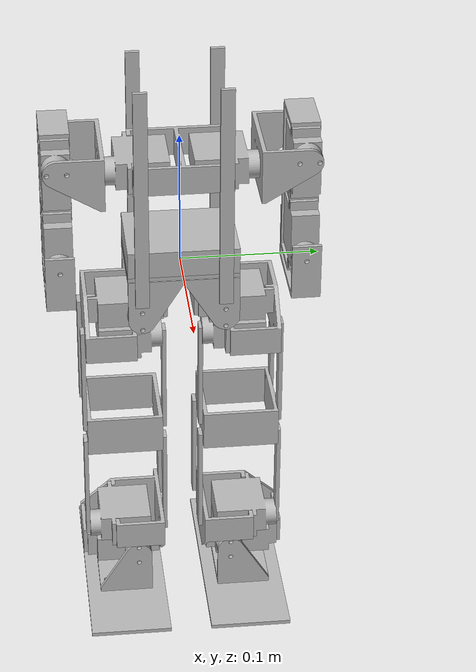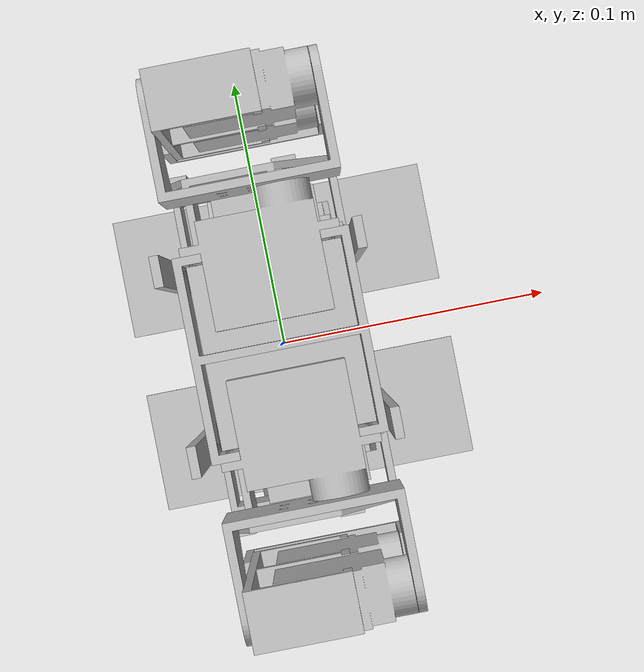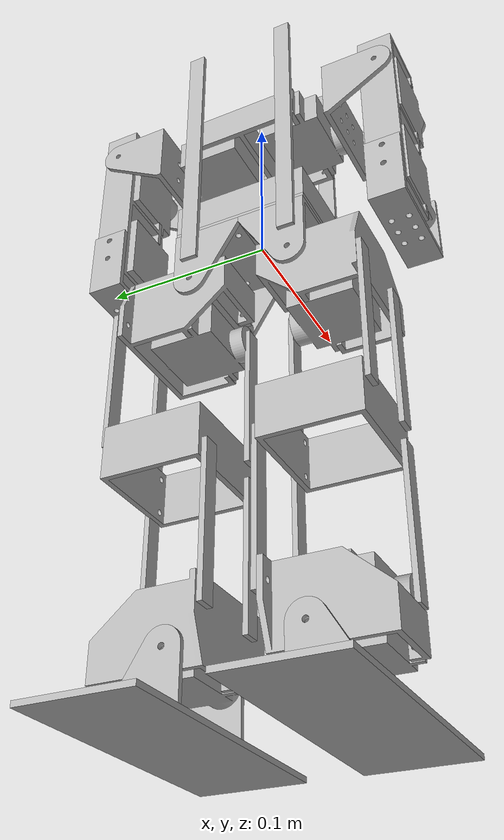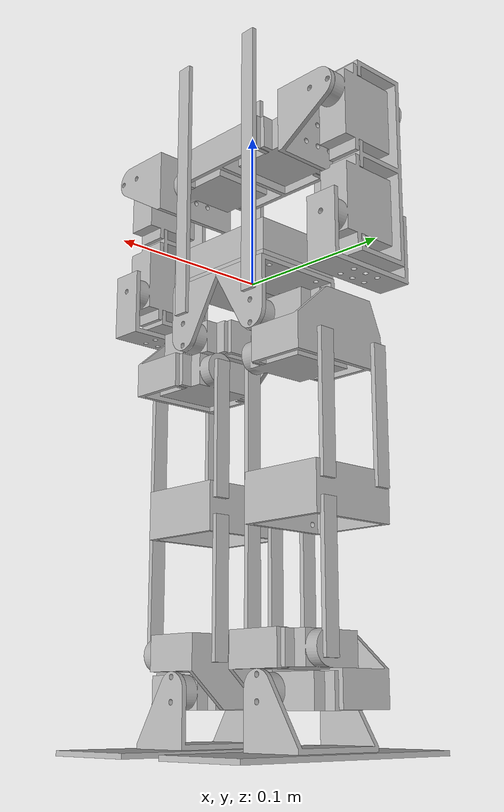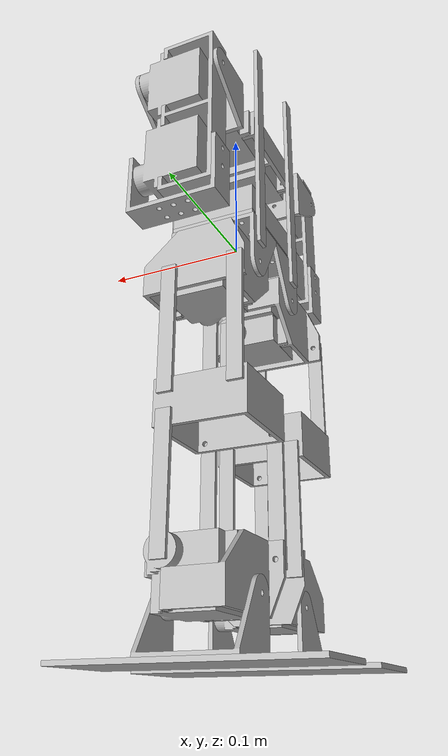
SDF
<sdf version='1.6'>
  <model name='b3w_walker'>
    <link name='base_link'>
      <pose frame=''>0 0 0 0 -0 0</pose>
      <inertial>
        <pose frame=''>0.00023 0 0.03829 0 -0 0</pose>
        <mass>0.24961</mass>
        <inertia>
          <ixx>0.000555553</ixx>
          <ixy>-8.28571e-09</ixy>
          <ixz>2.53843e-06</ixz>
          <iyy>0.000469536</iyy>
          <iyz>-2.44519e-10</iyz>
          <izz>0.000269099</izz>
        </inertia>
      </inertial>
      <collision name='base_link_fixed_joint_lump__collision_collision'>
        <pose frame=''>0 0 0.072 0 -0 0</pose>
        <geometry>
          <box>
            <size>0.068 0.08 0.15</size>
          </box>
        </geometry>
      </collision>
      <visual name='base_link_fixed_joint_lump__west_visual'>
        <pose frame=''>0.0335 -0.0545 -0.043 0 -0 1.5707</pose>
        <geometry>
          <mesh>
            <scale>0.001 0.001 0.001</scale>
            <uri>model://b3w_walker/models/b3w_walker/stl/body-west-1.STL</uri>
          </mesh>
        </geometry>
      </visual>
      <visual name='base_link_fixed_joint_lump__r_foot_joint_visual_1'>
        <pose frame=''>0.0335 -0.0545 -0.043 0 -0 1.5707</pose>
        <geometry>
          <mesh>
            <scale>0.001 0.001 0.001</scale>
            <uri>model://b3w_walker/models/b3w_walker/stl/body-r_foot_joint-1.STL</uri>
          </mesh>
        </geometry>
      </visual>
      <visual name='base_link_fixed_joint_lump__l_foot_joint_visual_2'>
        <pose frame=''>0.0335 -0.0545 -0.043 0 -0 1.5707</pose>
        <geometry>
          <mesh>
            <scale>0.001 0.001 0.001</scale>
            <uri>model://b3w_walker/models/b3w_walker/stl/body-l_foot_joint-1.STL</uri>
          </mesh>
        </geometry>
      </visual>
      <visual name='base_link_fixed_joint_lump__chest_visual_3'>
        <pose frame=''>0.0335 -0.0545 -0.043 0 -0 1.5707</pose>
        <geometry>
          <mesh>
            <scale>0.001 0.001 0.001</scale>
            <uri>model://b3w_walker/models/b3w_walker/stl/body-chest-1.STL</uri>
          </mesh>
        </geometry>
      </visual>
      <visual name='base_link_fixed_joint_lump__type2-1_visual_4'>
        <pose frame=''>0.0335 -0.0545 -0.043 0 -0 1.5707</pose>
        <geometry>
          <mesh>
            <scale>0.001 0.001 0.001</scale>
            <uri>model://b3w_walker/models/b3w_walker/stl/body-type2-1.STL</uri>
          </mesh>
        </geometry>
      </visual>
      <visual name='base_link_fixed_joint_lump__type2-2_visual_5'>
        <pose frame=''>0.0335 -0.0545 -0.043 0 -0 1.5707</pose>
        <geometry>
          <mesh>
            <scale>0.001 0.001 0.001</scale>
            <uri>model://b3w_walker/models/b3w_walker/stl/body-type2-2.STL</uri>
          </mesh>
        </geometry>
      </visual>
      <visual name='base_link_fixed_joint_lump__pi_visual_6'>
        <pose frame=''>0.0335 -0.0545 -0.043 0 -0 1.5707</pose>
        <geometry>
          <mesh>
            <scale>0.001 0.001 0.001</scale>
            <uri>model://b3w_walker/models/b3w_walker/stl/body-pi-1.STL</uri>
          </mesh>
        </geometry>
      </visual>
      <visual name='base_link_fixed_joint_lump__pole-1_visual_7'>
        <pose frame=''>0.0335 -0.0545 -0.043 0 -0 1.5707</pose>
        <geometry>
          <mesh>
            <scale>0.001 0.001 0.001</scale>
            <uri>model://b3w_walker/models/b3w_walker/stl/body-pole-1.STL</uri>
          </mesh>
        </geometry>
      </visual>
      <visual name='base_link_fixed_joint_lump__pole-2_visual_8'>
        <pose frame=''>0.0335 -0.0545 -0.043 0 -0 1.5707</pose>
        <geometry>
          <mesh>
            <scale>0.001 0.001 0.001</scale>
            <uri>model://b3w_walker/models/b3w_walker/stl/body-pole-2.STL</uri>
          </mesh>
        </geometry>
      </visual>
      <visual name='base_link_fixed_joint_lump__pole-3_visual_9'>
        <pose frame=''>0.0335 -0.0545 -0.043 0 -0 1.5707</pose>
        <geometry>
          <mesh>
            <scale>0.001 0.001 0.001</scale>
            <uri>model://b3w_walker/models/b3w_walker/stl/body-pole-3.STL</uri>
          </mesh>
        </geometry>
      </visual>
      <visual name='base_link_fixed_joint_lump__pole-4_visual_10'>
        <pose frame=''>0.0335 -0.0545 -0.043 0 -0 1.5707</pose>
        <geometry>
          <mesh>
            <scale>0.001 0.001 0.001</scale>
            <uri>model://b3w_walker/models/b3w_walker/stl/body-pole-4.STL</uri>
          </mesh>
        </geometry>
      </visual>
      <gravity>1</gravity>
      <velocity_decay/>
      <self_collide>1</self_collide>
    </link>
    <link name='l_thigh'>
      <pose frame=''>0.028 0.03 -0.033 0 -0 0</pose>
      <inertial>
        <pose frame=''>-0.02704 0.01199 -0.01054 3.14159 9.3e-05 -1.57089</pose>
        <mass>0.09576</mass>
        <inertia>
          <ixx>3.5786e-05</ixx>
          <ixy>-1.23213e-06</ixy>
          <ixz>-1.62184e-06</ixz>
          <iyy>3.55073e-05</iyy>
          <iyz>-1.3927e-06</iyz>
          <izz>4.40049e-05</izz>
        </inertia>
      </inertial>
      <collision name='l_thigh_fixed_joint_lump__collision_collision'>
        <pose frame=''>-0.03 0.0105 -0.0105 0 -0 0</pose>
        <geometry>
          <box>
            <size>0.07 0.061 0.042</size>
          </box>
        </geometry>
      </collision>
      <visual name='l_thigh_visual'>
        <pose frame=''>0.005 0.041 0.0105 3.14159 9.3e-05 -1.57089</pose>
        <geometry>
          <mesh>
            <scale>0.001 0.001 0.001</scale>
            <uri>model://b3w_walker/models/b3w_walker/stl/l_thigh.STL</uri>
          </mesh>
        </geometry>
        <material>
          <script>
            <uri>__default__</uri>
            <name>__default__</name>
          </script>
        </material>
      </visual>
      <visual name='l_thigh_fixed_joint_lump__type2-3_visual_1'>
        <pose frame=''>0.005 0.041 0.0105 3.14159 9.3e-05 -1.57089</pose>
        <geometry>
          <mesh>
            <scale>0.001 0.001 0.001</scale>
            <uri>model://b3w_walker/models/b3w_walker/stl/l_thigh-type2-3.STL</uri>
          </mesh>
        </geometry>
      </visual>
      <visual name='l_thigh_fixed_joint_lump__type2-4_visual_2'>
        <pose frame=''>0.005 0.041 0.0105 3.14159 9.3e-05 -1.57089</pose>
        <geometry>
          <mesh>
            <scale>0.001 0.001 0.001</scale>
            <uri>model://b3w_walker/models/b3w_walker/stl/l_thigh-type2-4.STL</uri>
          </mesh>
        </geometry>
      </visual>
      <gravity>1</gravity>
      <velocity_decay/>
      <self_collide>1</self_collide>
    </link>
    <joint name='l_footjoint_roll' type='revolute'>
      <child>l_thigh</child>
      <parent>base_link</parent>
      <axis>
        <xyz>1 0 0</xyz>
        <limit>
          <lower>-0.7854</lower>
          <upper>0.7854</upper>
          <effort>0.4</effort>
          <velocity>1.5707</velocity>
        </limit>
        <dynamics>
          <spring_reference>0</spring_reference>
          <spring_stiffness>0</spring_stiffness>
        </dynamics>
        <use_parent_model_frame>1</use_parent_model_frame>
      </axis>
    </joint>
    <link name='l_ub_bone'>
      <pose frame=''>-0.032 0.071 -0.054 0 -0 0</pose>
      <inertial>
        <pose frame=''>0 0.0015 -0.0375 0 -0 0</pose>
        <mass>0.0026</mass>
        <inertia>
          <ixx>1.56769e-06</ixx>
          <ixy>0</ixy>
          <ixz>0</ixz>
          <iyy>1.58797e-06</iyy>
          <iyz>0</iyz>
          <izz>2.363e-08</izz>
        </inertia>
      </inertial>
      <collision name='l_ub_bone_fixed_joint_lump__collision_collision'>
        <pose frame=''>0 0.0015 -0.0375 0 -0 0</pose>
        <geometry>
          <box>
            <size>0.01 0.003 0.085</size>
          </box>
        </geometry>
      </collision>
      <visual name='l_ub_bone_fixed_joint_lump__bone_visual'>
        <pose frame=''>0 0.0015 -0.0375 0 -0 0</pose>
        <geometry>
          <box>
            <size>0.01 0.003 0.085</size>
          </box>
        </geometry>
      </visual>
      <gravity>1</gravity>
      <velocity_decay/>
      <self_collide>1</self_collide>
    </link>
    <joint name='l_b_footjoint_pitch' type='revolute'>
      <child>l_ub_bone</child>
      <parent>l_thigh</parent>
      <axis>
        <xyz>0 -1 0</xyz>
        <limit>
          <lower>-1.5707</lower>
          <upper>1.5707</upper>
          <effort>0</effort>
          <velocity>1.5707</velocity>
        </limit>
        <dynamics>
          <spring_reference>0</spring_reference>
          <spring_stiffness>0</spring_stiffness>
        </dynamics>
        <use_parent_model_frame>1</use_parent_model_frame>
      </axis>
    </joint>
    <link name='l_uf_bone'>
      <pose frame=''>0.013 0.015 -0.054 0 -0 0</pose>
      <inertial>
        <pose frame=''>0 0.028 -0.0375 0 -0 0</pose>
        <mass>0.0052</mass>
        <inertia>
          <ixx>7.66298e-06</ixx>
          <ixy>0</ixy>
          <ixz>0</ixz>
          <iyy>3.12539e-06</iyy>
          <iyz>0</iyz>
          <izz>4.57429e-06</izz>
        </inertia>
      </inertial>
      <collision name='l_uf_bone_fixed_joint_lump__collision_collision'>
        <pose frame=''>0 0.028 -0.0375 0 -0 0</pose>
        <geometry>
          <box>
            <size>0.01 0.062 0.085</size>
          </box>
        </geometry>
      </collision>
      <visual name='l_uf_bone_fixed_joint_lump__r_bone_visual'>
        <pose frame=''>0 -0.0015 -0.0375 0 -0 0</pose>
        <geometry>
          <box>
            <size>0.01 0.003 0.085</size>
          </box>
        </geometry>
      </visual>
      <visual name='l_uf_bone_fixed_joint_lump__l_bone_visual_1'>
        <pose frame=''>0 0.0575 -0.0375 0 -0 0</pose>
        <geometry>
          <box>
            <size>0.01 0.003 0.085</size>
          </box>
        </geometry>
      </visual>
      <gravity>1</gravity>
      <velocity_decay/>
      <self_collide>1</self_collide>
    </link>
    <joint name='l_footjoint_pitch' type='revolute'>
      <child>l_uf_bone</child>
      <parent>l_thigh</parent>
      <axis>
        <xyz>0 1 0</xyz>
        <limit>
          <lower>-1.5707</lower>
          <upper>1.5707</upper>
          <effort>0.4</effort>
          <velocity>1.5707</velocity>
        </limit>
        <dynamics>
          <spring_reference>0</spring_reference>
          <spring_stiffness>0</spring_stiffness>
        </dynamics>
        <use_parent_model_frame>1</use_parent_model_frame>
      </axis>
    </joint>
    <link name='l_knee'>
      <pose frame=''>0.013 0.015 -0.129 0 -0 0</pose>
      <inertial>
        <pose frame=''>-0.0231 0.028 -0.01 1.5707 0 1.5707</pose>
        <mass>0.01398</mass>
        <inertia>
          <ixx>1.21815e-05</ixx>
          <ixy>-1.472e-08</ixy>
          <ixz>0</ixz>
          <iyy>2.02231e-05</iyy>
          <iyz>0</iyz>
          <izz>1.13075e-05</izz>
        </inertia>
      </inertial>
      <collision name='l_knee_fixed_joint_lump__collision_collision'>
        <pose frame=''>-0.0225 0.028 -0.01 0 -0 0</pose>
        <geometry>
          <box>
            <size>0.06 0.056 0.03</size>
          </box>
        </geometry>
      </collision>
      <visual name='l_knee_visual'>
        <pose frame=''>-0.0525 0 -0.025 1.5707 0 1.5707</pose>
        <geometry>
          <mesh>
            <scale>0.001 0.001 0.001</scale>
            <uri>model://b3w_walker/models/b3w_walker/stl/l_knee.STL</uri>
          </mesh>
        </geometry>
        <material>
          <script>
            <uri>__default__</uri>
            <name>__default__</name>
          </script>
        </material>
      </visual>
      <gravity>1</gravity>
      <velocity_decay/>
      <self_collide>1</self_collide>
    </link>
    <joint name='l_uf_knee' type='revolute'>
      <child>l_knee</child>
      <parent>l_uf_bone</parent>
      <axis>
        <xyz>0 1 0</xyz>
        <limit>
          <lower>-1.5707</lower>
          <upper>1.5707</upper>
          <effort>0</effort>
          <velocity>1.5707</velocity>
        </limit>
        <dynamics>
          <spring_reference>0</spring_reference>
          <spring_stiffness>0</spring_stiffness>
        </dynamics>
        <use_parent_model_frame>1</use_parent_model_frame>
      </axis>
    </joint>
    <link name='l_db_bone'>
      <pose frame=''>-0.032 0.015 -0.149 0 -0 0</pose>
      <inertial>
        <pose frame=''>0 -0.0015 -0.0375 0 -0 0</pose>
        <mass>0.0026</mass>
        <inertia>
          <ixx>1.56769e-06</ixx>
          <ixy>0</ixy>
          <ixz>0</ixz>
          <iyy>1.58797e-06</iyy>
          <iyz>0</iyz>
          <izz>2.363e-08</izz>
        </inertia>
      </inertial>
      <collision name='l_db_bone_fixed_joint_lump__collision_collision'>
        <pose frame=''>0 -0.0015 -0.0375 0 -0 0</pose>
        <geometry>
          <box>
            <size>0.01 0.003 0.085</size>
          </box>
        </geometry>
      </collision>
      <visual name='l_db_bone_fixed_joint_lump__bone_visual'>
        <pose frame=''>0 -0.0015 -0.0375 0 -0 0</pose>
        <geometry>
          <box>
            <size>0.01 0.003 0.085</size>
          </box>
        </geometry>
      </visual>
      <gravity>1</gravity>
      <velocity_decay/>
      <self_collide>1</self_collide>
    </link>
    <joint name='l_db_knee' type='revolute'>
      <child>l_db_bone</child>
      <parent>l_knee</parent>
      <axis>
        <xyz>0 1 0</xyz>
        <limit>
          <lower>-1.5707</lower>
          <upper>1.5707</upper>
          <effort>0</effort>
          <velocity>1.5707</velocity>
        </limit>
        <dynamics>
          <spring_reference>0</spring_reference>
          <spring_stiffness>0</spring_stiffness>
        </dynamics>
        <use_parent_model_frame>1</use_parent_model_frame>
      </axis>
    </joint>
    <link name='l_df_bone'>
      <pose frame=''>0.013 0.071 -0.149 0 -0 0</pose>
      <inertial>
        <pose frame=''>0 -0.028 -0.0375 0 -0 0</pose>
        <mass>0.0052</mass>
        <inertia>
          <ixx>7.66298e-06</ixx>
          <ixy>0</ixy>
          <ixz>0</ixz>
          <iyy>3.12539e-06</iyy>
          <iyz>0</iyz>
          <izz>4.57429e-06</izz>
        </inertia>
      </inertial>
      <collision name='l_df_bone_fixed_joint_lump__collision_collision'>
        <pose frame=''>0 -0.028 -0.0375 0 -0 0</pose>
        <geometry>
          <box>
            <size>0.01 0.062 0.085</size>
          </box>
        </geometry>
      </collision>
      <visual name='l_df_bone_fixed_joint_lump__l_bone_visual'>
        <pose frame=''>0 0.0015 -0.0375 0 -0 0</pose>
        <geometry>
          <box>
            <size>0.01 0.003 0.085</size>
          </box>
        </geometry>
      </visual>
      <visual name='l_df_bone_fixed_joint_lump__r_bone_visual_1'>
        <pose frame=''>0 -0.0575 -0.0375 0 -0 0</pose>
        <geometry>
          <box>
            <size>0.01 0.003 0.085</size>
          </box>
        </geometry>
      </visual>
      <gravity>1</gravity>
      <velocity_decay/>
      <self_collide>1</self_collide>
    </link>
    <joint name='l_df_knee' type='revolute'>
      <child>l_df_bone</child>
      <parent>l_knee</parent>
      <axis>
        <xyz>0 1 0</xyz>
        <limit>
          <lower>-1.5707</lower>
          <upper>1.5707</upper>
          <effort>0</effort>
          <velocity>1.5707</velocity>
        </limit>
        <dynamics>
          <spring_reference>0</spring_reference>
          <spring_stiffness>0</spring_stiffness>
        </dynamics>
        <use_parent_model_frame>1</use_parent_model_frame>
      </axis>
    </joint>
    <link name='l_ankle'>
      <pose frame=''>0.013 0.071 -0.224 0 -0 0</pose>
      <inertial>
        <pose frame=''>-0.01208 -0.02762 -0.01086 0 -0 1.5707</pose>
        <mass>0.09615</mass>
        <inertia>
          <ixx>3.6876e-05</ixx>
          <ixy>1.3016e-07</ixy>
          <ixz>-1.09722e-06</ixz>
          <iyy>3.63822e-05</iyy>
          <iyz>-1.34261e-06</iyz>
          <izz>4.42119e-05</izz>
        </inertia>
      </inertial>
      <collision name='l_ankle_fixed_joint_lump__collision_collision'>
        <pose frame=''>-0.015 -0.03 -0.0105 0 -0 0</pose>
        <geometry>
          <box>
            <size>0.07 0.061 0.042</size>
          </box>
        </geometry>
      </collision>
      <visual name='l_ankle_visual'>
        <pose frame=''>0.02 -0.056 -0.0315 0 -0 1.5707</pose>
        <geometry>
          <mesh>
            <scale>0.001 0.001 0.001</scale>
            <uri>model://b3w_walker/models/b3w_walker/stl/l_ankle.STL</uri>
          </mesh>
        </geometry>
        <material>
          <script>
            <uri>__default__</uri>
            <name>__default__</name>
          </script>
        </material>
      </visual>
      <visual name='l_ankle_fixed_joint_lump__type2-4_visual_1'>
        <pose frame=''>0.02 -0.056 -0.0315 0 -0 1.5707</pose>
        <geometry>
          <mesh>
            <scale>0.001 0.001 0.001</scale>
            <uri>model://b3w_walker/models/b3w_walker/stl/l_ankle_type2-4.STL</uri>
          </mesh>
        </geometry>
      </visual>
      <visual name='l_ankle_fixed_joint_lump__type2-5_visual_2'>
        <pose frame=''>0.02 -0.056 -0.0315 0 -0 1.5707</pose>
        <geometry>
          <mesh>
            <scale>0.001 0.001 0.001</scale>
            <uri>model://b3w_walker/models/b3w_walker/stl/l_ankle_type2-5.STL</uri>
          </mesh>
        </geometry>
      </visual>
      <gravity>1</gravity>
      <velocity_decay/>
      <self_collide>1</self_collide>
    </link>
    <joint name='l_ankle_pitch' type='revolute'>
      <child>l_ankle</child>
      <parent>l_df_bone</parent>
      <axis>
        <xyz>0 1 0</xyz>
        <limit>
          <lower>-1.5707</lower>
          <upper>1.5707</upper>
          <effort>0.4</effort>
          <velocity>1.5707</velocity>
        </limit>
        <dynamics>
          <spring_reference>0</spring_reference>
          <spring_stiffness>0</spring_stiffness>
        </dynamics>
        <use_parent_model_frame>1</use_parent_model_frame>
      </axis>
    </joint>
    <link name='l_foot'>
      <pose frame=''>0.028 0.035 -0.244 0 -0 0</pose>
      <inertial>
        <pose frame=''>-0.02802 0.00926 -0.03082 0 -0 0</pose>
        <mass>0.04342</mass>
        <inertia>
          <ixx>1.36435e-05</ixx>
          <ixy>7.59e-09</ixy>
          <ixz>-2.556e-08</ixz>
          <iyy>7.39033e-05</iyy>
          <iyz>-7.7174e-07</iyz>
          <izz>8.12818e-05</izz>
        </inertia>
      </inertial>
      <collision name='l_foot_fixed_joint_lump__collision_collision'>
        <pose frame=''>-0.028 0.01 -0.033 0 -0 0</pose>
        <geometry>
          <box>
            <size>0.16 0.06 0.006</size>
          </box>
        </geometry>
	<surface>
	  <friction>
	    <ode>
	      <mu1>1.5</mu1>
	      <mu2>1.5</mu2>
	      <fdir1>1 0 0</fdir1>
	    </ode>
	  </friction>
	  <contact>
	    <ode>
	      <kp>1400000.0</kp>
	      <kd>280.0</kd>
	      <maxVel>10.0</maxVel>
	      <minDepth>0.00</minDepth>
	    </ode>
	  </contact>
	</surface>
      </collision>
      <visual name='l_foot_visual'>
        <pose frame=''>-0.108 -0.02 -0.036 0 -0 0</pose>
        <geometry>
          <mesh>
            <scale>0.001 0.001 0.001</scale>
            <uri>model://b3w_walker/models/b3w_walker/stl/l_bottom-r_foot-2.STL</uri>
          </mesh>
        </geometry>
        <material>
          <script>
            <uri>__default__</uri>
            <name>__default__</name>
          </script>
        </material>
      </visual>
      <visual name='l_foot_bottom_visual_1'>
        <pose frame=''>-0.108 -0.02 -0.036 0 -0 0</pose>
        <geometry>
          <mesh>
            <scale>0.001 0.001 0.001</scale>
            <uri>model://b3w_walker/models/b3w_walker/stl/l_bottom-bottom-2.STL</uri>
          </mesh>
        </geometry>
        <material>
          <script>
            <uri>__default__</uri>
            <name>__default__</name>
          </script>
        </material>
      </visual>
      <gravity>1</gravity>
      <velocity_decay/>
      <self_collide>1</self_collide>
    </link>
    <joint name='l_ankle_roll' type='revolute'>
      <child>l_foot</child>
      <parent>l_ankle</parent>
      <axis>
        <xyz>-1 0 0</xyz>
        <limit>
          <lower>-0.3927</lower>
          <upper>0.3927</upper>
          <effort>0.4</effort>
          <velocity>1.5707</velocity>
        </limit>
        <dynamics>
          <spring_reference>0</spring_reference>
          <spring_stiffness>0</spring_stiffness>
        </dynamics>
        <use_parent_model_frame>1</use_parent_model_frame>
      </axis>
    </joint>
    <link name='l_shoulder'>
      <pose frame=''>0.0105 0.0545 0.08 0 -0 0</pose>
      <inertial>
        <pose frame=''>-0.01006 0.0099 0.0023 0 -1.5707 0</pose>
        <mass>0.01398</mass>
        <inertia>
          <ixx>1.00148e-05</ixx>
          <ixy>5.2371e-07</ixy>
          <ixz>6.31e-09</ixz>
          <iyy>9.8003e-06</iyy>
          <iyz>1.893e-08</iyz>
          <izz>3.54451e-06</izz>
        </inertia>
      </inertial>
      <collision name='l_shoulder_fixed_joint_lump__collision_collision'>
        <pose frame=''>-0.01 0.0215 0 0 -0 0</pose>
        <geometry>
          <box>
            <size>0.062 0.043 0.04</size>
          </box>
        </geometry>
      </collision>
      <visual name='l_shoulder_visual'>
        <pose frame=''>0.021 0 -0.02 3.14159 -1.57079 3.14159</pose>
        <geometry>
          <mesh>
            <scale>0.001 0.001 0.001</scale>
            <uri>model://b3w_walker/models/b3w_walker/stl/l_shoulder.STL</uri>
          </mesh>
        </geometry>
        <material>
          <script>
            <uri>__default__</uri>
            <name>__default__</name>
          </script>
        </material>
      </visual>
      <gravity>1</gravity>
      <velocity_decay/>
      <self_collide>1</self_collide>
    </link>
    <joint name='l_shoulder_pitch' type='revolute'>
      <child>l_shoulder</child>
      <parent>base_link</parent>
      <axis>
        <xyz>0 -1 0</xyz>
        <limit>
          <lower>-1.5707</lower>
          <upper>1.5707</upper>
          <effort>0.4</effort>
          <velocity>1.5707</velocity>
        </limit>
        <dynamics>
          <spring_reference>0</spring_reference>
          <spring_stiffness>0</spring_stiffness>
        </dynamics>
        <use_parent_model_frame>1</use_parent_model_frame>
      </axis>
    </joint>
    <link name='l_upper_arm'>
      <pose frame=''>0.0285 0.0875 0.09 0 -0 0</pose>
      <inertial>
        <pose frame=''>-0.02823 0 -0.0395 0 1.5707 1.5707</pose>
        <mass>0.09178</mass>
        <inertia>
          <ixx>2.13034e-05</ixx>
          <ixy>0</ixy>
          <ixz>0</ixz>
          <iyy>0.000107782</iyy>
          <iyz>0</iyz>
          <izz>0.000122945</izz>
        </inertia>
      </inertial>
      <collision name='l_upper_arm_fixed_joint_lump__collision_collision'>
        <pose frame=''>-0.0375 0 -0.03931 0 -0 0</pose>
        <geometry>
          <box>
            <size>0.037 0.021 0.119</size>
          </box>
        </geometry>
      </collision>
      <visual name='l_upper_arm_fixed_joint_lump__upper_arm_visual'>
        <pose frame=''>0 -0.0105 0.02 3.14159 1.57079 -1.57089</pose>
        <geometry>
          <mesh>
            <scale>0.001 0.001 0.001</scale>
            <uri>model://b3w_walker/models/b3w_walker/stl/arm-upper_arm-1.STL</uri>
          </mesh>
        </geometry>
      </visual>
      <visual name='l_upper_arm_fixed_joint_lump__type2-1_visual_1'>
        <pose frame=''>0 -0.0105 0.02 3.14159 1.57079 -1.57089</pose>
        <geometry>
          <mesh>
            <scale>0.001 0.001 0.001</scale>
            <uri>model://b3w_walker/models/b3w_walker/stl/arm-type2-1.STL</uri>
          </mesh>
        </geometry>
      </visual>
      <visual name='l_upper_arm_fixed_joint_lump__type2-2_visual_2'>
        <pose frame=''>0 -0.0105 0.02 3.14159 1.57079 -1.57089</pose>
        <geometry>
          <mesh>
            <scale>0.001 0.001 0.001</scale>
            <uri>model://b3w_walker/models/b3w_walker/stl/arm-type2-2.STL</uri>
          </mesh>
        </geometry>
      </visual>
      <gravity>1</gravity>
      <velocity_decay/>
      <self_collide>1</self_collide>
    </link>
    <joint name='l_shoulder_roll' type='revolute'>
      <child>l_upper_arm</child>
      <parent>l_shoulder</parent>
      <axis>
        <xyz>1 0 0</xyz>
        <limit>
          <lower>-0.3927</lower>
          <upper>1.5707</upper>
          <effort>0.4</effort>
          <velocity>1.5707</velocity>
        </limit>
        <dynamics>
          <spring_reference>0</spring_reference>
          <spring_stiffness>0</spring_stiffness>
        </dynamics>
        <use_parent_model_frame>1</use_parent_model_frame>
      </axis>
    </joint>
    <link name='l_lower_arm'>
      <pose frame=''>0.0285 0.0875 0.011 0 -0 0</pose>
      <inertial>
        <pose frame=''>-0.02791 0 -0.01674 1.5707 -0 3.1415</pose>
        <mass>0.00875</mass>
        <inertia>
          <ixx>1.89418e-06</ixx>
          <ixy>-1.372e-08</ixy>
          <ixz>0</ixz>
          <iyy>5.88431e-06</iyy>
          <iyz>0</iyz>
          <izz>7.12594e-06</izz>
        </inertia>
      </inertial>
      <collision name='l_lower_arm_fixed_joint_lump__collision_collision'>
        <pose frame=''>-0.028 0 -0.009 0 -0 0</pose>
        <geometry>
          <box>
            <size>0.062 0.021 0.042</size>
          </box>
        </geometry>
      </collision>
      <visual name='l_lower_arm_fixed_joint_lump__box_visual'>
        <pose frame=''>0.003 -0.0105 -0.03 1.5707 -0 3.1415</pose>
        <geometry>
          <mesh>
            <scale>0.001 0.001 0.001</scale>
            <uri>model://b3w_walker/models/b3w_walker/stl/hinge.STL</uri>
          </mesh>
        </geometry>
      </visual>
      <gravity>1</gravity>
      <velocity_decay/>
      <self_collide>1</self_collide>
    </link>
    <joint name='l_elbow_roll' type='revolute'>
      <child>l_lower_arm</child>
      <parent>l_upper_arm</parent>
      <axis>
        <xyz>-1 0 0</xyz>
        <limit>
          <lower>-1.5707</lower>
          <upper>1.5707</upper>
          <effort>0.4</effort>
          <velocity>1.5707</velocity>
        </limit>
        <dynamics>
          <spring_reference>0</spring_reference>
          <spring_stiffness>0</spring_stiffness>
        </dynamics>
        <use_parent_model_frame>1</use_parent_model_frame>
      </axis>
    </joint>
    <link name='r_thigh'>
      <pose frame=''>0.028 -0.03 -0.033 0 -0 0</pose>
      <inertial>
        <pose frame=''>-0.02704 -0.01199 -0.01054 3.14159 9.3e-05 -1.57089</pose>
        <mass>0.09576</mass>
        <inertia>
          <ixx>3.5786e-05</ixx>
          <ixy>1.23213e-06</ixy>
          <ixz>1.62184e-06</ixz>
          <iyy>3.55073e-05</iyy>
          <iyz>-1.3927e-06</iyz>
          <izz>4.40049e-05</izz>
        </inertia>
      </inertial>
      <collision name='r_thigh_fixed_joint_lump__collision_collision'>
        <pose frame=''>-0.03 -0.0105 -0.0105 0 -0 0</pose>
        <geometry>
          <box>
            <size>0.07 0.061 0.042</size>
          </box>
        </geometry>
      </collision>
      <visual name='r_thigh_visual'>
        <pose frame=''>0.005 0.02 0.0105 3.14159 9.3e-05 -1.57089</pose>
        <geometry>
          <mesh>
            <scale>0.001 0.001 0.001</scale>
            <uri>model://b3w_walker/models/b3w_walker/stl/r_thigh.STL</uri>
          </mesh>
        </geometry>
        <material>
          <script>
            <uri>__default__</uri>
            <name>__default__</name>
          </script>
        </material>
      </visual>
      <visual name='r_thigh_fixed_joint_lump__type2-1_visual_1'>
        <pose frame=''>0.005 0.02 0.0105 3.14159 9.3e-05 -1.57089</pose>
        <geometry>
          <mesh>
            <scale>0.001 0.001 0.001</scale>
            <uri>model://b3w_walker/models/b3w_walker/stl/r_thigh-type2-1.STL</uri>
          </mesh>
        </geometry>
      </visual>
      <visual name='r_thigh_fixed_joint_lump__type2-2_visual_2'>
        <pose frame=''>0.005 0.02 0.0105 3.14159 9.3e-05 -1.57089</pose>
        <geometry>
          <mesh>
            <scale>0.001 0.001 0.001</scale>
            <uri>model://b3w_walker/models/b3w_walker/stl/r_thigh-type2-2.STL</uri>
          </mesh>
        </geometry>
      </visual>
      <gravity>1</gravity>
      <velocity_decay/>
      <self_collide>1</self_collide>
    </link>
    <joint name='r_footjoint_roll' type='revolute'>
      <child>r_thigh</child>
      <parent>base_link</parent>
      <axis>
        <xyz>1 0 0</xyz>
        <limit>
          <lower>-0.7854</lower>
          <upper>0.7854</upper>
          <effort>0.4</effort>
          <velocity>1.5707</velocity>
        </limit>
        <dynamics>
          <spring_reference>0</spring_reference>
          <spring_stiffness>0</spring_stiffness>
        </dynamics>
        <use_parent_model_frame>1</use_parent_model_frame>
      </axis>
    </joint>
    <link name='r_ub_bone'>
      <pose frame=''>-0.032 -0.071 -0.054 0 -0 0</pose>
      <inertial>
        <pose frame=''>0 -0.0015 -0.0375 0 -0 0</pose>
        <mass>0.0026</mass>
        <inertia>
          <ixx>1.56769e-06</ixx>
          <ixy>0</ixy>
          <ixz>0</ixz>
          <iyy>1.58797e-06</iyy>
          <iyz>0</iyz>
          <izz>2.363e-08</izz>
        </inertia>
      </inertial>
      <collision name='r_ub_bone_fixed_joint_lump__collision_collision'>
        <pose frame=''>0 -0.0015 -0.0375 0 -0 0</pose>
        <geometry>
          <box>
            <size>0.01 0.003 0.085</size>
          </box>
        </geometry>
      </collision>
      <visual name='r_ub_bone_fixed_joint_lump__bone_visual'>
        <pose frame=''>0 -0.0015 -0.0375 0 -0 0</pose>
        <geometry>
          <box>
            <size>0.01 0.003 0.085</size>
          </box>
        </geometry>
      </visual>
      <gravity>1</gravity>
      <velocity_decay/>
      <self_collide>1</self_collide>
    </link>
    <joint name='r_b_footjoint_pitch' type='revolute'>
      <child>r_ub_bone</child>
      <parent>r_thigh</parent>
      <axis>
        <xyz>0 1 0</xyz>
        <limit>
          <lower>-1.5707</lower>
          <upper>1.5707</upper>
          <effort>0</effort>
          <velocity>1.5707</velocity>
        </limit>
        <dynamics>
          <spring_reference>0</spring_reference>
          <spring_stiffness>0</spring_stiffness>
        </dynamics>
        <use_parent_model_frame>1</use_parent_model_frame>
      </axis>
    </joint>
    <link name='r_uf_bone'>
      <pose frame=''>0.013 -0.015 -0.054 0 -0 0</pose>
      <inertial>
        <pose frame=''>0 -0.028 -0.0375 0 -0 0</pose>
        <mass>0.0052</mass>
        <inertia>
          <ixx>7.66298e-06</ixx>
          <ixy>0</ixy>
          <ixz>0</ixz>
          <iyy>3.12539e-06</iyy>
          <iyz>0</iyz>
          <izz>4.57429e-06</izz>
        </inertia>
      </inertial>
      <collision name='r_uf_bone_fixed_joint_lump__collision_collision'>
        <pose frame=''>0 -0.028 -0.0375 0 -0 0</pose>
        <geometry>
          <box>
            <size>0.01 0.062 0.085</size>
          </box>
        </geometry>
      </collision>
      <visual name='r_uf_bone_fixed_joint_lump__l_bone_visual'>
        <pose frame=''>0 0.0015 -0.0375 0 -0 0</pose>
        <geometry>
          <box>
            <size>0.01 0.003 0.085</size>
          </box>
        </geometry>
      </visual>
      <visual name='r_uf_bone_fixed_joint_lump__r_bone_visual_1'>
        <pose frame=''>0 -0.0575 -0.0375 0 -0 0</pose>
        <geometry>
          <box>
            <size>0.01 0.003 0.085</size>
          </box>
        </geometry>
      </visual>
      <gravity>1</gravity>
      <velocity_decay/>
      <self_collide>1</self_collide>
    </link>
    <joint name='r_footjoint_pitch' type='revolute'>
      <child>r_uf_bone</child>
      <parent>r_thigh</parent>
      <axis>
        <xyz>0 -1 0</xyz>
        <limit>
          <lower>-1.5707</lower>
          <upper>1.5707</upper>
          <effort>0.4</effort>
          <velocity>1.5707</velocity>
        </limit>
        <dynamics>
          <spring_reference>0</spring_reference>
          <spring_stiffness>0</spring_stiffness>
        </dynamics>
        <use_parent_model_frame>1</use_parent_model_frame>
      </axis>
    </joint>
    <link name='r_knee'>
      <pose frame=''>0.013 -0.015 -0.129 0 -0 0</pose>
      <inertial>
        <pose frame=''>-0.0231 -0.028 -0.01 1.5707 0 1.5707</pose>
        <mass>0.01398</mass>
        <inertia>
          <ixx>1.21815e-05</ixx>
          <ixy>1.472e-08</ixy>
          <ixz>0</ixz>
          <iyy>2.02231e-05</iyy>
          <iyz>0</iyz>
          <izz>1.13075e-05</izz>
        </inertia>
      </inertial>
      <collision name='r_knee_fixed_joint_lump__collision_collision'>
        <pose frame=''>-0.0225 -0.028 -0.01 0 -0 0</pose>
        <geometry>
          <box>
            <size>0.06 0.056 0.03</size>
          </box>
        </geometry>
      </collision>
      <visual name='r_knee_visual'>
        <pose frame=''>-0.0525 -0.056 -0.025 1.5707 0 1.5707</pose>
        <geometry>
          <mesh>
            <scale>0.001 0.001 0.001</scale>
            <uri>model://b3w_walker/models/b3w_walker/stl/r_knee.STL</uri>
          </mesh>
        </geometry>
        <material>
          <script>
            <uri>__default__</uri>
            <name>__default__</name>
          </script>
        </material>
      </visual>
      <gravity>1</gravity>
      <velocity_decay/>
      <self_collide>1</self_collide>
    </link>
    <joint name='r_uf_knee' type='revolute'>
      <child>r_knee</child>
      <parent>r_uf_bone</parent>
      <axis>
        <xyz>0 -1 0</xyz>
        <limit>
          <lower>-1.5707</lower>
          <upper>1.5707</upper>
          <effort>0</effort>
          <velocity>1.5707</velocity>
        </limit>
        <dynamics>
          <spring_reference>0</spring_reference>
          <spring_stiffness>0</spring_stiffness>
        </dynamics>
        <use_parent_model_frame>1</use_parent_model_frame>
      </axis>
    </joint>
    <link name='r_db_bone'>
      <pose frame=''>-0.032 -0.015 -0.149 0 -0 0</pose>
      <inertial>
        <pose frame=''>0 0.0015 -0.0375 0 -0 0</pose>
        <mass>0.0026</mass>
        <inertia>
          <ixx>1.56769e-06</ixx>
          <ixy>0</ixy>
          <ixz>0</ixz>
          <iyy>1.58797e-06</iyy>
          <iyz>0</iyz>
          <izz>2.363e-08</izz>
        </inertia>
      </inertial>
      <collision name='r_db_bone_fixed_joint_lump__collision_collision'>
        <pose frame=''>0 0.0015 -0.0375 0 -0 0</pose>
        <geometry>
          <box>
            <size>0.01 0.003 0.085</size>
          </box>
        </geometry>
      </collision>
      <visual name='r_db_bone_fixed_joint_lump__bone_visual'>
        <pose frame=''>0 0.0015 -0.0375 0 -0 0</pose>
        <geometry>
          <box>
            <size>0.01 0.003 0.085</size>
          </box>
        </geometry>
      </visual>
      <gravity>1</gravity>
      <velocity_decay/>
      <self_collide>1</self_collide>
    </link>
    <joint name='r_db_knee' type='revolute'>
      <child>r_db_bone</child>
      <parent>r_knee</parent>
      <axis>
        <xyz>0 -1 0</xyz>
        <limit>
          <lower>-1.5707</lower>
          <upper>1.5707</upper>
          <effort>0</effort>
          <velocity>1.5707</velocity>
        </limit>
        <dynamics>
          <spring_reference>0</spring_reference>
          <spring_stiffness>0</spring_stiffness>
        </dynamics>
        <use_parent_model_frame>1</use_parent_model_frame>
      </axis>
    </joint>
    <link name='r_df_bone'>
      <pose frame=''>0.013 -0.071 -0.149 0 -0 0</pose>
      <inertial>
        <pose frame=''>0 0.028 -0.0375 0 -0 0</pose>
        <mass>0.0052</mass>
        <inertia>
          <ixx>7.66298e-06</ixx>
          <ixy>0</ixy>
          <ixz>0</ixz>
          <iyy>3.12539e-06</iyy>
          <iyz>0</iyz>
          <izz>4.57429e-06</izz>
        </inertia>
      </inertial>
      <collision name='r_df_bone_fixed_joint_lump__collision_collision'>
        <pose frame=''>0 0.028 -0.0375 0 -0 0</pose>
        <geometry>
          <box>
            <size>0.01 0.062 0.085</size>
          </box>
        </geometry>
      </collision>
      <visual name='r_df_bone_fixed_joint_lump__r_bone_visual'>
        <pose frame=''>0 -0.0015 -0.0375 0 -0 0</pose>
        <geometry>
          <box>
            <size>0.01 0.003 0.085</size>
          </box>
        </geometry>
      </visual>
      <visual name='r_df_bone_fixed_joint_lump__l_bone_visual_1'>
        <pose frame=''>0 0.0575 -0.0375 0 -0 0</pose>
        <geometry>
          <box>
            <size>0.01 0.003 0.085</size>
          </box>
        </geometry>
      </visual>
      <gravity>1</gravity>
      <velocity_decay/>
      <self_collide>1</self_collide>
    </link>
    <joint name='r_df_knee' type='revolute'>
      <child>r_df_bone</child>
      <parent>r_knee</parent>
      <axis>
        <xyz>0 -1 0</xyz>
        <limit>
          <lower>-1.5707</lower>
          <upper>1.5707</upper>
          <effort>0</effort>
          <velocity>1.5707</velocity>
        </limit>
        <dynamics>
          <spring_reference>0</spring_reference>
          <spring_stiffness>0</spring_stiffness>
        </dynamics>
        <use_parent_model_frame>1</use_parent_model_frame>
      </axis>
    </joint>
    <link name='r_ankle'>
      <pose frame=''>0.013 -0.071 -0.224 0 -0 0</pose>
      <inertial>
        <pose frame=''>-0.01208 0.02762 -0.01086 0 -0 1.5707</pose>
        <mass>0.09615</mass>
        <inertia>
          <ixx>3.6876e-05</ixx>
          <ixy>-1.3016e-07</ixy>
          <ixz>1.09722e-06</ixz>
          <iyy>3.63822e-05</iyy>
          <iyz>-1.34261e-06</iyz>
          <izz>4.42119e-05</izz>
        </inertia>
      </inertial>
      <collision name='r_ankle_fixed_joint_lump__collision_collision'>
        <pose frame=''>-0.015 0.03 -0.0105 0 -0 0</pose>
        <geometry>
          <box>
            <size>0.07 0.061 0.042</size>
          </box>
        </geometry>
      </collision>
      <visual name='r_ankle_visual'>
        <pose frame=''>0.02 -0.005 -0.0315 0 -0 1.5707</pose>
        <geometry>
          <mesh>
            <scale>0.001 0.001 0.001</scale>
            <uri>model://b3w_walker/models/b3w_walker/stl/r_ankle.STL</uri>
          </mesh>
        </geometry>
        <material>
          <script>
            <uri>__default__</uri>
            <name>__default__</name>
          </script>
        </material>
      </visual>
      <visual name='r_ankle_fixed_joint_lump__type2-1_visual_1'>
        <pose frame=''>0.02 -0.005 -0.0315 0 -0 1.5707</pose>
        <geometry>
          <mesh>
            <scale>0.001 0.001 0.001</scale>
            <uri>model://b3w_walker/models/b3w_walker/stl/r_ankle_type2-1.STL</uri>
          </mesh>
        </geometry>
      </visual>
      <visual name='r_ankle_fixed_joint_lump__type2-2_visual_2'>
        <pose frame=''>0.02 -0.005 -0.0315 0 -0 1.5707</pose>
        <geometry>
          <mesh>
            <scale>0.001 0.001 0.001</scale>
            <uri>model://b3w_walker/models/b3w_walker/stl/r_ankle_type2-2.STL</uri>
          </mesh>
        </geometry>
      </visual>
      <gravity>1</gravity>
      <velocity_decay/>
      <self_collide>1</self_collide>
    </link>
    <joint name='r_ankle_pitch' type='revolute'>
      <child>r_ankle</child>
      <parent>r_df_bone</parent>
      <axis>
        <xyz>0 -1 0</xyz>
        <limit>
          <lower>-1.5707</lower>
          <upper>1.5707</upper>
          <effort>0.4</effort>
          <velocity>1.5707</velocity>
        </limit>
        <dynamics>
          <spring_reference>0</spring_reference>
          <spring_stiffness>0</spring_stiffness>
        </dynamics>
        <use_parent_model_frame>1</use_parent_model_frame>
      </axis>
    </joint>
    <link name='r_foot'>
      <pose frame=''>0.028 -0.035 -0.244 0 -0 0</pose>
      <inertial>
        <pose frame=''>-0.02802 -0.00926 -0.03082 0 -0 0</pose>
        <mass>0.04342</mass>
        <inertia>
          <ixx>1.36435e-05</ixx>
          <ixy>-7.59e-09</ixy>
          <ixz>-2.556e-08</ixz>
          <iyy>7.39033e-05</iyy>
          <iyz>7.7174e-07</iyz>
          <izz>8.12818e-05</izz>
        </inertia>
      </inertial>
      <collision name='r_foot_fixed_joint_lump__collision_collision'>
        <pose frame=''>-0.028 -0.01 -0.033 0 -0 0</pose>
        <geometry>
          <box>
            <size>0.16 0.06 0.006</size>
          </box>
        </geometry>
	<surface>
	  <friction>
	    <ode>
	      <mu1>1.5</mu1>
	      <mu2>1.5</mu2>
	      <fdir1>1 0 0</fdir1>
	    </ode>
	  </friction>
	  <contact>
	    <ode>
	      <kp>1400000.0</kp>
	      <kd>280.0</kd>
	      <maxVel>10.0</maxVel>
	      <minDepth>0.00</minDepth>
	    </ode>
	  </contact>
	</surface>
      </collision>
      <visual name='r_foot_visual'>
        <pose frame=''>-0.108 -0.04 -0.036 0 -0 0</pose>
        <geometry>
          <mesh>
            <scale>0.001 0.001 0.001</scale>
            <uri>model://b3w_walker/models/b3w_walker/stl/r_bottom-r_foot-1.STL</uri>
          </mesh>
        </geometry>
        <material>
          <script>
            <uri>__default__</uri>
            <name>__default__</name>
          </script>
        </material>
      </visual>
      <visual name='r_foot_bottom_visual_1'>
        <pose frame=''>-0.108 -0.04 -0.036 0 -0 0</pose>
        <geometry>
          <mesh>
            <scale>0.001 0.001 0.001</scale>
            <uri>model://b3w_walker/models/b3w_walker/stl/r_bottom-bottom-1.STL</uri>
          </mesh>
        </geometry>
        <material>
          <script>
            <uri>__default__</uri>
            <name>__default__</name>
          </script>
        </material>
      </visual>
      <gravity>1</gravity>
      <velocity_decay/>
      <self_collide>1</self_collide>
    </link>
    <joint name='r_ankle_roll' type='revolute'>
      <child>r_foot</child>
      <parent>r_ankle</parent>
      <axis>
        <xyz>-1 0 0</xyz>
        <limit>
          <lower>-0.3927</lower>
          <upper>0.3927</upper>
          <effort>0.4</effort>
          <velocity>1.5707</velocity>
        </limit>
        <dynamics>
          <spring_reference>0</spring_reference>
          <spring_stiffness>0</spring_stiffness>
        </dynamics>
        <use_parent_model_frame>1</use_parent_model_frame>
      </axis>
    </joint>
    <link name='r_shoulder'>
      <pose frame=''>0.0105 -0.0545 0.08 0 -0 0</pose>
      <inertial>
        <pose frame=''>-0.01006 -0.0099 0.0023 0 -1.5707 0</pose>
        <mass>0.01398</mass>
        <inertia>
          <ixx>1.00148e-05</ixx>
          <ixy>-5.2371e-07</ixy>
          <ixz>6.31e-09</ixz>
          <iyy>9.8003e-06</iyy>
          <iyz>-1.893e-08</iyz>
          <izz>3.54451e-06</izz>
        </inertia>
      </inertial>
      <collision name='r_shoulder_fixed_joint_lump__collision_collision'>
        <pose frame=''>-0.01 -0.0215 0 0 -0 0</pose>
        <geometry>
          <box>
            <size>0.062 0.043 0.04</size>
          </box>
        </geometry>
      </collision>
      <visual name='r_shoulder_visual'>
        <pose frame=''>0.021 -0.043 -0.02 3.14159 -1.57079 3.14159</pose>
        <geometry>
          <mesh>
            <scale>0.001 0.001 0.001</scale>
            <uri>model://b3w_walker/models/b3w_walker/stl/r_shoulder.STL</uri>
          </mesh>
        </geometry>
        <material>
          <script>
            <uri>__default__</uri>
            <name>__default__</name>
          </script>
        </material>
      </visual>
      <gravity>1</gravity>
      <velocity_decay/>
      <self_collide>1</self_collide>
    </link>
    <joint name='r_shoulder_pitch' type='revolute'>
      <child>r_shoulder</child>
      <parent>base_link</parent>
      <axis>
        <xyz>0 1 0</xyz>
        <limit>
          <lower>-1.5707</lower>
          <upper>1.5707</upper>
          <effort>0.4</effort>
          <velocity>1.5707</velocity>
        </limit>
        <dynamics>
          <spring_reference>0</spring_reference>
          <spring_stiffness>0</spring_stiffness>
        </dynamics>
        <use_parent_model_frame>1</use_parent_model_frame>
      </axis>
    </joint>
    <link name='r_upper_arm'>
      <pose frame=''>0.0285 -0.0875 0.09 0 -0 0</pose>
      <inertial>
        <pose frame=''>-0.02823 0 -0.0395 0 1.5707 1.5707</pose>
        <mass>0.09178</mass>
        <inertia>
          <ixx>2.13034e-05</ixx>
          <ixy>0</ixy>
          <ixz>0</ixz>
          <iyy>0.000107782</iyy>
          <iyz>0</iyz>
          <izz>0.000122945</izz>
        </inertia>
      </inertial>
      <collision name='r_upper_arm_fixed_joint_lump__collision_collision'>
        <pose frame=''>-0.0375 0 -0.03931 0 -0 0</pose>
        <geometry>
          <box>
            <size>0.037 0.021 0.119</size>
          </box>
        </geometry>
      </collision>
      <visual name='r_upper_arm_fixed_joint_lump__upper_arm_visual'>
        <pose frame=''>0 -0.0105 0.02 3.14159 1.57079 -1.57089</pose>
        <geometry>
          <mesh>
            <scale>0.001 0.001 0.001</scale>
            <uri>model://b3w_walker/models/b3w_walker/stl/arm-upper_arm-1.STL</uri>
          </mesh>
        </geometry>
      </visual>
      <visual name='r_upper_arm_fixed_joint_lump__type2-1_visual_1'>
        <pose frame=''>0 -0.0105 0.02 3.14159 1.57079 -1.57089</pose>
        <geometry>
          <mesh>
            <scale>0.001 0.001 0.001</scale>
            <uri>model://b3w_walker/models/b3w_walker/stl/arm-type2-1.STL</uri>
          </mesh>
        </geometry>
      </visual>
      <visual name='r_upper_arm_fixed_joint_lump__type2-2_visual_2'>
        <pose frame=''>0 -0.0105 0.02 3.14159 1.57079 -1.57089</pose>
        <geometry>
          <mesh>
            <scale>0.001 0.001 0.001</scale>
            <uri>model://b3w_walker/models/b3w_walker/stl/arm-type2-2.STL</uri>
          </mesh>
        </geometry>
      </visual>
      <gravity>1</gravity>
      <velocity_decay/>
      <self_collide>1</self_collide>
    </link>
    <joint name='r_shoulder_roll' type='revolute'>
      <child>r_upper_arm</child>
      <parent>r_shoulder</parent>
      <axis>
        <xyz>1 0 0</xyz>
        <limit>
          <lower>-1.5707</lower>
          <upper>0.3927</upper>
          <effort>0.4</effort>
          <velocity>1.5707</velocity>
        </limit>
        <dynamics>
          <spring_reference>0</spring_reference>
          <spring_stiffness>0</spring_stiffness>
        </dynamics>
        <use_parent_model_frame>1</use_parent_model_frame>
      </axis>
    </joint>
    <link name='r_lower_arm'>
      <pose frame=''>0.0285 -0.0875 0.011 0 -0 0</pose>
      <inertial>
        <pose frame=''>-0.02791 0 -0.01674 1.5707 -0 3.1415</pose>
        <mass>0.00875</mass>
        <inertia>
          <ixx>1.89418e-06</ixx>
          <ixy>-1.372e-08</ixy>
          <ixz>0</ixz>
          <iyy>5.88431e-06</iyy>
          <iyz>0</iyz>
          <izz>7.12594e-06</izz>
        </inertia>
      </inertial>
      <collision name='r_lower_arm_fixed_joint_lump__collision_collision'>
        <pose frame=''>-0.028 0 -0.009 0 -0 0</pose>
        <geometry>
          <box>
            <size>0.062 0.021 0.042</size>
          </box>
        </geometry>
      </collision>
      <visual name='r_lower_arm_fixed_joint_lump__box_visual'>
        <pose frame=''>0.003 -0.0105 -0.03 1.5707 -0 3.1415</pose>
        <geometry>
          <mesh>
            <scale>0.001 0.001 0.001</scale>
            <uri>model://b3w_walker/models/b3w_walker/stl/hinge.STL</uri>
          </mesh>
        </geometry>
      </visual>
      <gravity>1</gravity>
      <velocity_decay/>
      <self_collide>1</self_collide>
    </link>
    <joint name='r_elbow_roll' type='revolute'>
      <child>r_lower_arm</child>
      <parent>r_upper_arm</parent>
      <axis>
        <xyz>-1 0 0</xyz>
        <limit>
          <lower>-1.5707</lower>
          <upper>1.5707</upper>
          <effort>0.4</effort>
          <velocity>1.5707</velocity>
        </limit>
        <dynamics>
          <spring_reference>0</spring_reference>
          <spring_stiffness>0</spring_stiffness>
        </dynamics>
        <use_parent_model_frame>1</use_parent_model_frame>
      </axis>
    </joint>

        <!-- ********** new **********  -->
    <joint name='l_ub_knee' type='revolute'>
      <child>l_knee</child>
      <parent>l_ub_bone</parent>
      <pose>-0.045 0.056 0 0 0 0</pose>
      <axis>
        <xyz>0 -1 0</xyz>
        <limit>
          <lower>-1.5707</lower>
          <upper>1.5707</upper>
          <effort>0</effort>
          <velocity>1.5707</velocity>
        </limit>
        <dynamics>
          <spring_reference>0</spring_reference>
          <spring_stiffness>0</spring_stiffness>
        </dynamics>
        <use_parent_model_frame>1</use_parent_model_frame>
      </axis>
    </joint>

    <!-- ************** new ************** -->
    <joint name='l_b_ankle_pitch' type='revolute'>
      <child>l_ankle</child>
      <parent>l_db_bone</parent>
      <pose>-0.045 -0.056 0 0 0 0</pose>
      <axis>
        <xyz>0 1 0</xyz>
        <limit>
          <lower>-1.5707</lower>
          <upper>1.5707</upper>
          <effort>0.4</effort>
          <velocity>1.5707</velocity>
        </limit>
        <dynamics>
          <spring_reference>0</spring_reference>
          <spring_stiffness>0</spring_stiffness>
        </dynamics>
        <use_parent_model_frame>1</use_parent_model_frame>
      </axis>
    </joint>

    <!-- ********** new **********  -->
    <joint name='r_ub_knee' type='revolute'>
      <child>r_knee</child>
      <parent>r_ub_bone</parent>
      <pose>-0.045 -0.056 0 0 0 0</pose>
      <axis>
        <xyz>0 1 0</xyz>
        <limit>
          <lower>-1.5707</lower>
          <upper>1.5707</upper>
          <effort>0</effort>
          <velocity>1.5707</velocity>
        </limit>
        <dynamics>
          <spring_reference>0</spring_reference>
          <spring_stiffness>0</spring_stiffness>
        </dynamics>
        <use_parent_model_frame>1</use_parent_model_frame>
      </axis>
    </joint>

    <!-- ************** new ************** -->
    <joint name='r_b_ankle_pitch' type='revolute'>
      <child>r_ankle</child>
      <parent>r_db_bone</parent>
      <pose>-0.045 0.056 0 0 0 0</pose>
      <axis>
        <xyz>0 -1 0</xyz>
        <limit>
          <lower>-1.5707</lower>
          <upper>1.5707</upper>
          <effort>0.4</effort>
          <velocity>1.5707</velocity>
        </limit>
        <dynamics>
          <spring_reference>0</spring_reference>
          <spring_stiffness>0</spring_stiffness>
        </dynamics>
        <use_parent_model_frame>1</use_parent_model_frame>
      </axis>
    </joint>

    <static>0</static>
    <plugin name='gazebo_ros_control' filename='libgazebo_ros_control.so'>
      <robotNamespace>b3w_walker</robotNamespace>
      <robotParam>b3w_walker/robot_description</robotParam>
      <legacyModeNS>true</legacyModeNS>
    </plugin>
  </model>
</sdf>
